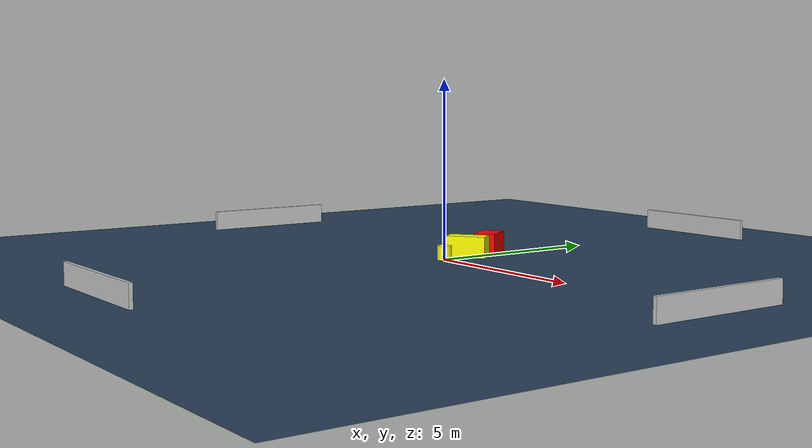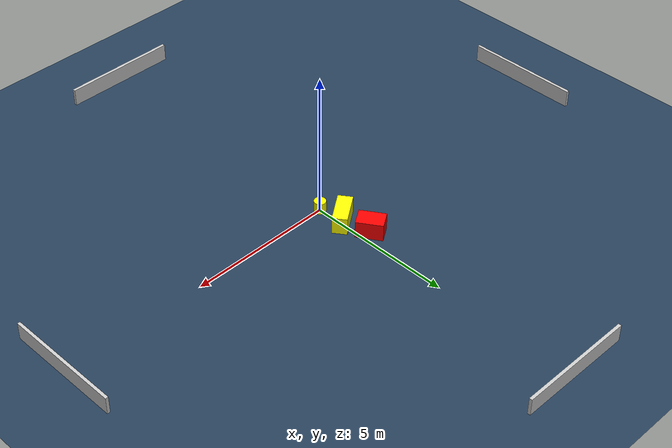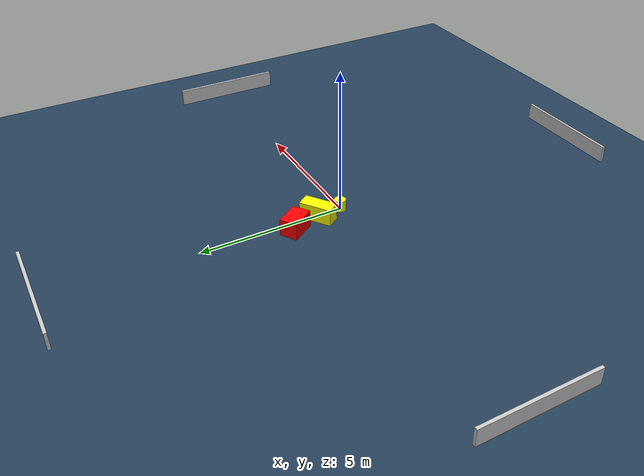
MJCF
<?xml version="1.0" ?>
<mujoco model="generated_environment">
  <option timestep="0.01" integrator="RK4" cone="elliptic"/>
  <default>
    <geom density="1"/>
  </default>
  <asset>
    <texture builtin="gradient" height="3072" name="skybox" rgb1="0.3 0.5 0.7" rgb2="0 0 0" type="skybox" width="512"/>
    <texture builtin="checker" height="300" name="groundplane" rgb1="0.2 0.3 0.4" rgb2="0.1 0.2 0.3" type="2d" width="300"/>
    <material name="groundplane" reflectance="0.2" texrepeat="5 5" texture="groundplane"/>
  </asset>
  <worldbody>
    <light dir="0 0 -1" directional="true" pos="0 0 1.5"/>
    <geom condim="3" friction="0.5 0.005 0.001" material="groundplane" name="floor" pos="0 0 0" size="0 0 0.05" type="plane"/>
    <body name="walls">
      <geom name="wall_1" condim="4" pos="-10.0 0.0 0.3" rgba="0.800000011920929 0.800000011920929 0.800000011920929 1.0" size="0.05 2.0 0.3" type="box"/>
      <geom name="wall_2" condim="4" pos="10.0 0.0 0.3" rgba="0.800000011920929 0.800000011920929 0.800000011920929 1.0" size="0.05 2.0 0.3" type="box"/>
      <geom name="wall_3" condim="4" pos="0.0 -10.0 0.3" rgba="0.800000011920929 0.800000011920929 0.800000011920929 1.0" size="2.0 0.05 0.3" type="box"/>
      <geom name="wall_4" condim="4" pos="0.0 10.0 0.3" rgba="0.800000011920929 0.800000011920929 0.800000011920929 1.0" size="2.0 0.05 0.3" type="box"/>
    </body>
    <body name="robot">
      <joint name="joint_x" type="slide" pos="0 0 0" axis="1 0 0"/>
      <joint name="joint_y" type="slide" pos="0 0 0" axis="0 1 0"/>
      <geom name="robot" type="cylinder" pos="0.0 0.0 0.2" size="0.2 0.2 0.0" mass="5.0" friction="1.0 0.005 0.0001" condim="4" rgba="1.0 1.0 0.0 1.0"/>
    </body>
    <body name="obstacle_1_movable">
      <geom name="obstacle_1_movable" condim="4" pos="-0.1005593215480726 0.8882326227098675 0.3" euler="0 0 215.35623229219334" friction="0.0 0.005 0.001" rgba="1.0 1.0 0.0 1.0" size="0.566845095808411 0.24774655017700756 0.3" type="box" mass="0.1"/>
      <joint type="free"/>
    </body>
    <body name="obstacle_2_static">
      <geom name="obstacle_2_static" condim="4" pos="-0.3637100941093448 1.8617821061193467 0.3" euler="0 0 213.20017305784586" friction="0.0 0.005 0.001" rgba="1.0 0.0 0.0 1.0" size="0.3059452242937632 0.4458801640558645 0.3" type="box"/>
    </body>
  </worldbody>
  <actuator>
    <motor name="actuator_x" joint="joint_x" gear="1" ctrlrange="-1 1"/>
    <motor name="actuator_y" joint="joint_y" gear="1" ctrlrange="-1 1"/>
  </actuator>
</mujoco>
